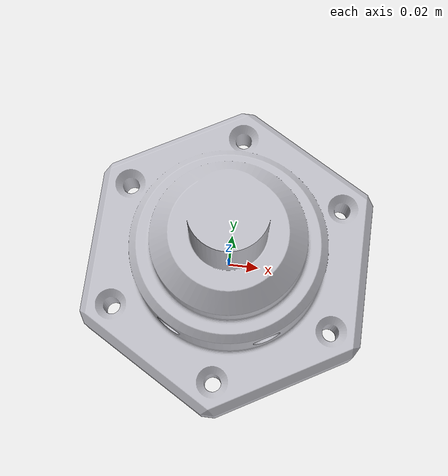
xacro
<?xml version="1.0" ?>
<robot name="robot_arm" xmlns:xacro="http://www.ros.org/wiki/xacro">

<xacro:include filename="$(find robot_arm_description)/urdf/materials.xacro" />
<xacro:include filename="$(find robot_arm_description)/urdf/robot_arm.trans" />
<xacro:include filename="$(find robot_arm_description)/urdf/robot_arm.gazebo" />
<link name="base_link">
  <inertial>
    <origin xyz="-0.004855958569777567 -3.117020451143698e-05 0.010567929785490999" rpy="0 0 0"/>
    <mass value="1.729910637467533"/>
    <inertia ixx="0.01119" iyy="0.01042" izz="0.021243" ixy="-5e-06" iyz="0.0" ixz="-7.9e-05"/>
  </inertial>
  <visual>
    <origin xyz="0 0 0" rpy="0 0 0"/>
    <geometry>
      <mesh filename="package://robot_arm_description/meshes/base_link.stl" scale="0.001 0.001 0.001"/>
    </geometry>
    <material name="silver"/>
  </visual>
  <collision>
    <origin xyz="0 0 0" rpy="0 0 0"/>
    <geometry>
      <mesh filename="package://robot_arm_description/meshes/base_link.stl" scale="0.001 0.001 0.001"/>
    </geometry>
  </collision>
</link>

</robot>
